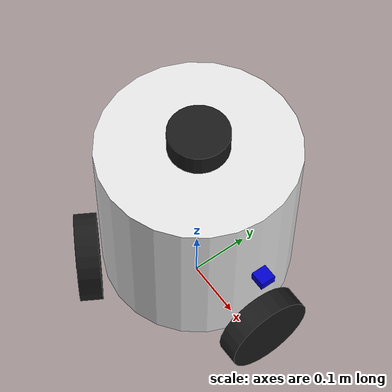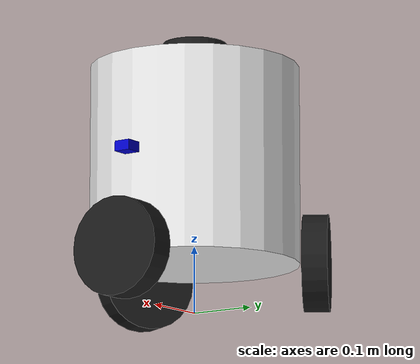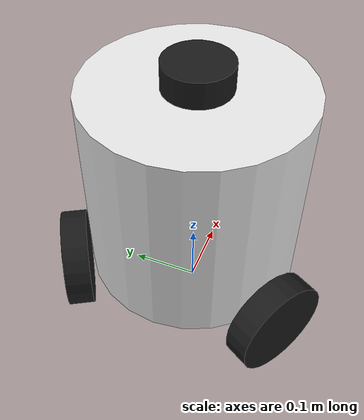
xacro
<?xml version="1.0"?>
<robot xmlns:xacro="http://www.ros.org/wiki/xacro" name="bin_boy">

  <!-- PROPERTIES -->
  <xacro:property name="PI" value="3.1415926535897931"/>

  <!-- Base dimensions - ACTUAL ROBOT MEASUREMENTS -->
  <xacro:property name="base_radius" value="0.1575"/>   <!-- 315mm diameter = 157.5mm radius -->
  <xacro:property name="base_height" value="0.300"/>    <!-- 300mm tall cylinder -->
  <xacro:property name="base_mass" value="5.0"/>        <!-- 5kg estimated -->

  <!-- Wheel properties - ACTUAL MEASUREMENTS -->
  <xacro:property name="wheel_radius" value="0.0725"/>  <!-- 145mm diameter = 72.5mm radius -->
  <xacro:property name="wheel_width" value="0.038"/>    <!-- 38mm wide -->
  <xacro:property name="wheel_mass" value="0.3"/>       <!-- 300g per wheel+servo -->

  <!-- Kiwi drive geometry -->
  <!-- Wheels positioned OUTSIDE the cylinder to avoid overlap -->
  <!-- Place wheels at radius + half wheel width + small clearance -->
  <xacro:property name="wheel_offset_r" value="${base_radius + wheel_width/2 + 0.005}"/> <!-- 5mm clearance from body -->

  <!-- Robot base_link is positioned so wheels just touch ground -->
  <!-- base_link origin = wheel_radius (so wheel centers are at wheel_radius height) -->
  <xacro:property name="base_link_z_offset" value="${wheel_radius}"/>

  <!-- Sensor heights (relative to base_link, which is at wheel_radius above ground) -->
  <xacro:property name="camera_height" value="0.150"/>  <!-- 150mm from bottom of cylinder -->
  <xacro:property name="lidar_height" value="${base_height}"/> <!-- On top of cylinder -->

  <!-- MATERIALS -->
  <material name="black">
    <color rgba="0.1 0.1 0.1 1"/>
  </material>

  <material name="white">
    <color rgba="0.9 0.9 0.9 1"/>
  </material>

  <material name="red">
    <color rgba="0.8 0.0 0.0 1"/>
  </material>

  <material name="blue">
    <color rgba="0.0 0.0 0.8 1"/>
  </material>

  <material name="green">
    <color rgba="0.0 0.8 0.0 1"/>
  </material>

  <!-- BASE FOOTPRINT (on ground, for navigation) -->
  <link name="base_footprint"/>

  <!-- BASE LINK (at wheel center height, so wheels touch ground) -->
  <link name="base_link">
    <visual>
      <!-- Cylinder bottom sits at z=0 of base_link -->
      <origin xyz="0 0 ${base_height/2}" rpy="0 0 0"/>
      <geometry>
        <cylinder radius="${base_radius}" length="${base_height}"/>
      </geometry>
      <material name="white"/>
    </visual>

    <collision>
      <origin xyz="0 0 ${base_height/2}" rpy="0 0 0"/>
      <geometry>
        <cylinder radius="${base_radius}" length="${base_height}"/>
      </geometry>
    </collision>

    <inertial>
      <origin xyz="0 0 ${base_height/2}" rpy="0 0 0"/>
      <mass value="${base_mass}"/>
      <inertia ixx="${base_mass*(3*base_radius*base_radius + base_height*base_height)/12}"
               ixy="0" ixz="0"
               iyy="${base_mass*(3*base_radius*base_radius + base_height*base_height)/12}"
               iyz="0"
               izz="${base_mass*base_radius*base_radius/2}"/>
    </inertial>
  </link>

  <!-- BASE_FOOTPRINT to BASE_LINK joint -->
  <joint name="base_footprint_joint" type="fixed">
    <parent link="base_footprint"/>
    <child link="base_link"/>
    <!-- Lift base_link so wheel centers are at wheel_radius height -->
    <!-- This puts wheel bottoms exactly at ground level -->
    <origin xyz="0 0 ${base_link_z_offset}" rpy="0 0 0"/>
  </joint>

  <!-- WHEEL MACRO for kiwi drive -->
  <xacro:macro name="kiwi_wheel" params="prefix angle">
    <link name="${prefix}_wheel">
      <visual>
        <!-- Wheel oriented to roll tangent to circle -->
        <origin xyz="0 0 0" rpy="${PI/2} 0 0"/>
        <geometry>
          <cylinder radius="${wheel_radius}" length="${wheel_width}"/>
        </geometry>
        <material name="black"/>
      </visual>

      <collision>
        <origin xyz="0 0 0" rpy="${PI/2} 0 0"/>
        <geometry>
          <cylinder radius="${wheel_radius}" length="${wheel_width}"/>
        </geometry>
      </collision>

      <inertial>
        <origin xyz="0 0 0" rpy="${PI/2} 0 0"/>
        <mass value="${wheel_mass}"/>
        <inertia ixx="${wheel_mass*(3*wheel_radius*wheel_radius + wheel_width*wheel_width)/12}"
                 ixy="0" ixz="0"
                 iyy="${wheel_mass*(3*wheel_radius*wheel_radius + wheel_width*wheel_width)/12}"
                 iyz="0"
                 izz="${wheel_mass*wheel_radius*wheel_radius/2}"/>
      </inertial>
    </link>

    <joint name="${prefix}_wheel_joint" type="continuous">
      <parent link="base_link"/>
      <child link="${prefix}_wheel"/>
      <!-- Position OUTSIDE body at wheel center height (z=0 relative to base_link) -->
      <!-- Rotate wheel frame by (angle + 90deg) so it rolls tangent to circle -->
      <origin xyz="${wheel_offset_r*cos(angle)} ${wheel_offset_r*sin(angle)} 0"
              rpy="0 0 ${angle + PI/2}"/>
      <!-- Wheel rotates about its Y-axis (now pointing tangentially) -->
      <axis xyz="0 1 0"/>
    </joint>
  </xacro:macro>

  <!-- CREATE THREE WHEELS at 120 degree intervals -->

  <!-- Wheel 0: Front (0 degrees) -->
  <xacro:kiwi_wheel prefix="front" angle="0"/>

  <!-- Wheel 1: Rear Left (120 degrees = 2*PI/3) -->
  <xacro:kiwi_wheel prefix="left_rear" angle="${2*PI/3}"/>

  <!-- Wheel 2: Rear Right (240 degrees = 4*PI/3) -->
  <xacro:kiwi_wheel prefix="right_rear" angle="${4*PI/3}"/>

  <!-- LIDAR SENSOR (LD14P) - Mounted on TOP of cylinder -->
  <link name="base_laser">
    <visual>
      <origin xyz="0 0 0" rpy="0 0 0"/>
      <geometry>
        <!-- LD14P: 96.3mm diameter, 38mm height -->
        <cylinder radius="0.04815" length="0.038"/>
      </geometry>
      <material name="black"/>
    </visual>

    <collision>
      <origin xyz="0 0 0" rpy="0 0 0"/>
      <geometry>
        <cylinder radius="0.04815" length="0.038"/>
      </geometry>
    </collision>

    <inertial>
      <mass value="0.131"/>
      <origin xyz="0 0 0" rpy="0 0 0"/>
      <inertia ixx="0.0001" ixy="0" ixz="0"
               iyy="0.0001" iyz="0"
               izz="0.0001"/>
    </inertial>
  </link>

  <joint name="laser_joint" type="fixed">
    <parent link="base_link"/>
    <child link="base_laser"/>
    <!-- Mounted on top of cylinder (base_height) + half LIDAR height for center -->
    <origin xyz="0 0 ${lidar_height + 0.019}" rpy="0 0 0"/>
  </joint>

  <!-- CAMERA (CSI Wide Angle Camera) -->
  <!-- Mounted on edge of cylinder, 150mm from bottom -->
  <link name="camera_link">
    <visual>
      <origin xyz="0 0 0" rpy="0 0 0"/>
      <geometry>
        <!-- Approximate camera module size -->
        <box size="0.025 0.025 0.015"/>
      </geometry>
      <material name="blue"/>
    </visual>

    <collision>
      <origin xyz="0 0 0" rpy="0 0 0"/>
      <geometry>
        <box size="0.025 0.025 0.015"/>
      </geometry>
    </collision>

    <inertial>
      <mass value="0.05"/>
      <origin xyz="0 0 0" rpy="0 0 0"/>
      <inertia ixx="0.00001" ixy="0" ixz="0"
               iyy="0.00001" iyz="0"
               izz="0.00001"/>
    </inertial>
  </link>

  <joint name="camera_joint" type="fixed">
    <parent link="base_link"/>
    <child link="camera_link"/>
    <!-- On edge of cylinder at 150mm height, no tilt -->
    <!-- Position slightly outside cylinder edge (camera depth/2 + small clearance) -->
    <origin xyz="${base_radius + 0.0125} 0 ${camera_height}" rpy="0 0 0"/>
  </joint>

  <!-- Camera optical frame (ROS standard for camera coordinate systems) -->
  <link name="camera_optical_frame"/>

  <joint name="camera_optical_joint" type="fixed">
    <parent link="camera_link"/>
    <child link="camera_optical_frame"/>
    <!-- Standard ROS camera optical frame transform -->
    <origin xyz="0 0 0" rpy="${-PI/2} 0 ${-PI/2}"/>
  </joint>

  <!-- IMU (MPU-6050) -->
  <link name="imu_link">
    <visual>
      <origin xyz="0 0 0" rpy="0 0 0"/>
      <geometry>
        <box size="0.02 0.016 0.003"/>
      </geometry>
      <material name="green"/>
    </visual>

    <inertial>
      <mass value="0.01"/>
      <origin xyz="0 0 0" rpy="0 0 0"/>
      <inertia ixx="0.000001" ixy="0" ixz="0"
               iyy="0.000001" iyz="0"
               izz="0.000001"/>
    </inertial>
  </link>

  <joint name="imu_joint" type="fixed">
    <parent link="base_link"/>
    <child link="imu_link"/>
    <!-- Mounted inside base, low and centered -->
    <origin xyz="0 0 0.05" rpy="0 0 0"/>
  </joint>

</robot>
